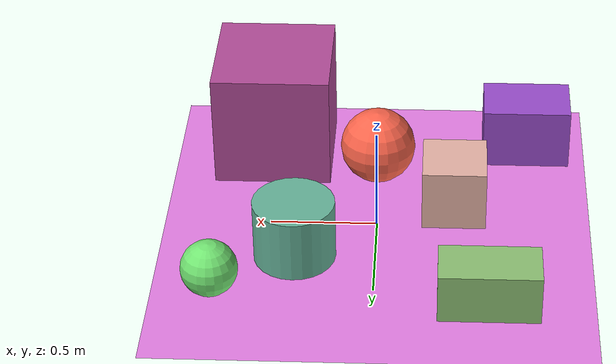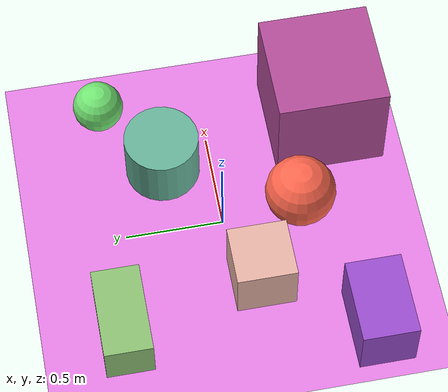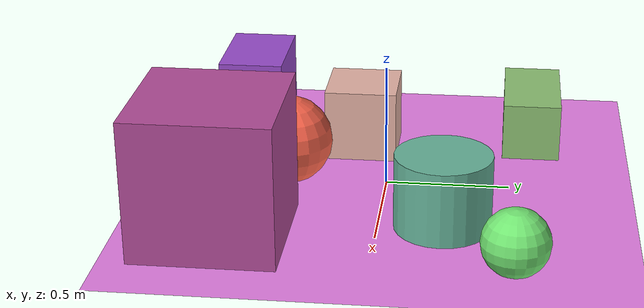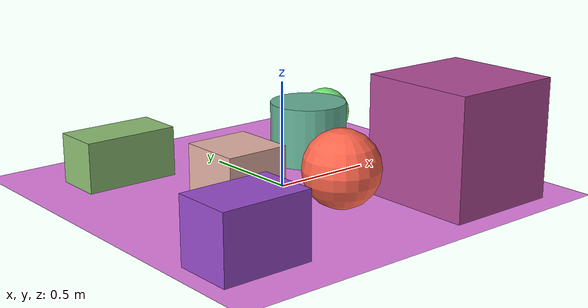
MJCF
<mujoco>
   <asset>
<texture type="skybox" builtin="gradient" rgb1="0.0 0.3 0.6" rgb2="0.2 0.0 0.2" width="256" height="256"/>
<texture name="flat_0" builtin="flat" rgb1="1.0 0.4 0.3" rgb2="1.0 0.4 0.3"  width="200" height="200"/>
<texture name="flat_1" builtin="flat" rgb1="0.6 0.3 0.8" rgb2="0.6 0.3 0.8"  width="200" height="200"/>
<texture name="gradient_2" builtin="gradient" rgb1="0.7 0.7 0.8" rgb2="0.1 0.7 0.4" width="200" height="200"/>
<texture name="gradient_3" builtin="gradient" rgb1="1.0 0.5 0.9" rgb2="0.1 1.0 0.0" width="200" height="200"/>
<texture name="checker_4" builtin="checker" type="2d" rgb1="0.7 1.0 0.3" rgb2="0.2 0.8 0.6" width="200" height="200"/>
<texture name="gradient_5" builtin="gradient" rgb1="0.8 0.4 0.5" rgb2="1.0 1.0 0.8" width="200" height="200"/>
<texture name="flat_6" builtin="flat" rgb1="0.7 0.3 0.6" rgb2="0.7 0.3 0.6"  width="200" height="200"/><material name="flat_0_mat" reflectance="0" texture="flat_0" texuniform="true"/>
<material name="flat_1_mat" reflectance="0" texture="flat_1" texuniform="true"/>
<material name="gradient_2_mat" reflectance="0" texture="gradient_2" texuniform="true"/>
<material name="gradient_3_mat" reflectance="0" texture="gradient_3" texuniform="true"/>
<material name="checker_4_mat" reflectance="0" texrepeat="6 6" texture="checker_4" texuniform="false" />
<material name="gradient_5_mat" reflectance="0" texture="gradient_5" texuniform="true"/>
<material name="flat_6_mat" reflectance="0" texture="flat_6" texuniform="true"/>
   </asset>

   <worldbody>
      <light diffuse=".9 .9 .9" pos="0 0 3" dir="0 0 -1"/>
     <geom type="plane" size="1 1 0.1" rgba="0.9 0.5 0.9 1"/>
<geom type="sphere" pos="0.01 -0.4 0.18" size="0.18 0.18 0.18" material="flat_0_mat" />
<geom type="box" pos="-0.71 -0.65 0.15" size="0.21 0.14 0.15" material="flat_1_mat" />
<geom type="cylinder" pos="0.37 0.25 0.15" size="0.19 0.15 0.15" material="gradient_2_mat" />
<geom type="box" pos="-0.52 0.59 0.12" size="0.23 0.12 0.12" material="gradient_3_mat" />
<geom type="sphere" pos="0.73 0.53 0.13" size="0.13 0.13 0.13" material="checker_4_mat" />
<geom type="box" pos="-0.36 -0.13 0.15" size="0.15 0.15 0.15" material="gradient_5_mat" />
<geom type="box" pos="0.52 -0.61 0.28" size="0.28 0.28 0.28" material="flat_6_mat" /><camera euler="60 0 180" fovy="60" name="camera_a" pos="0 -1.5 1"></camera>   </worldbody>
</mujoco>
